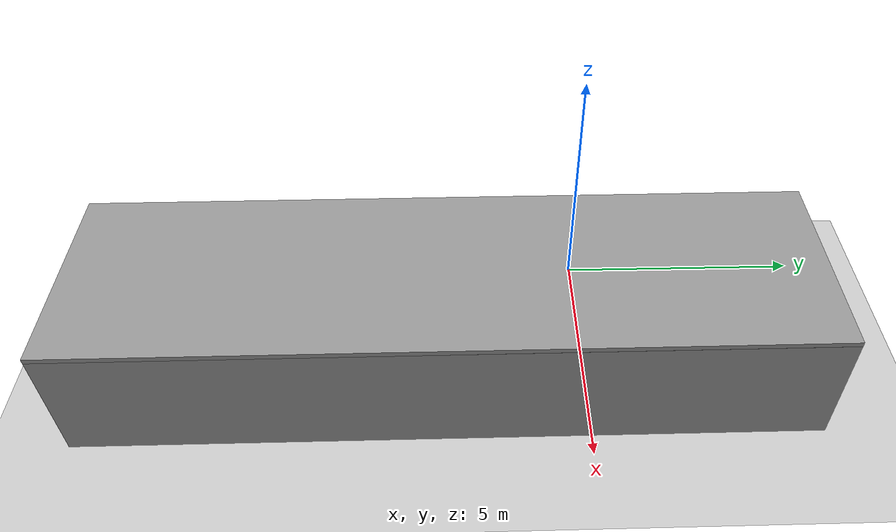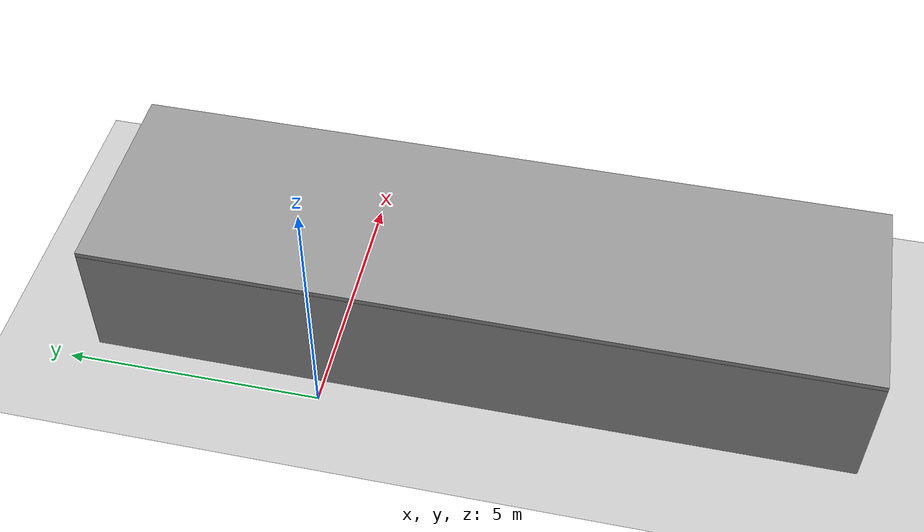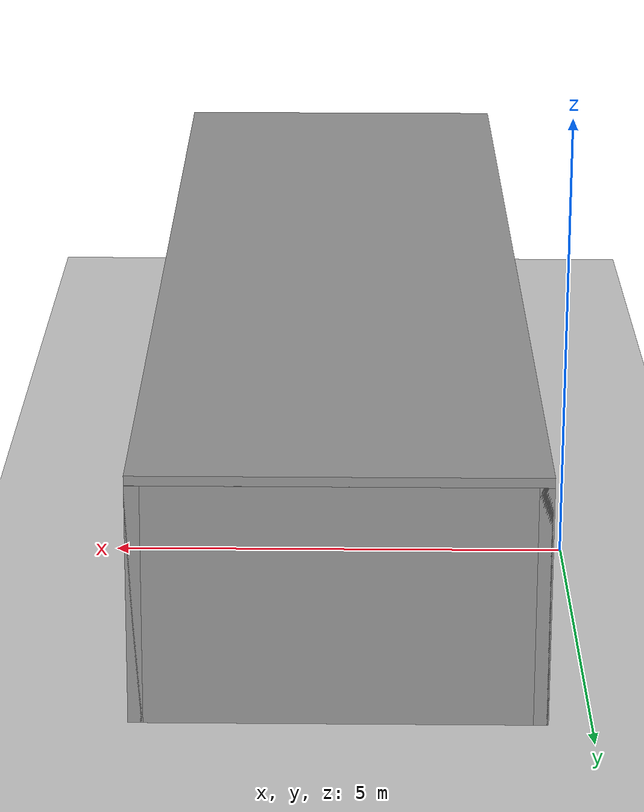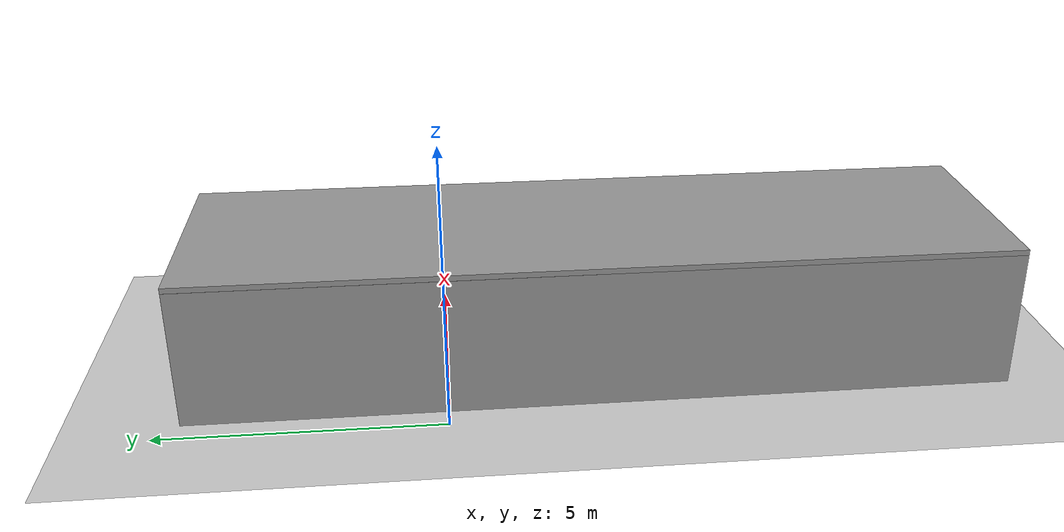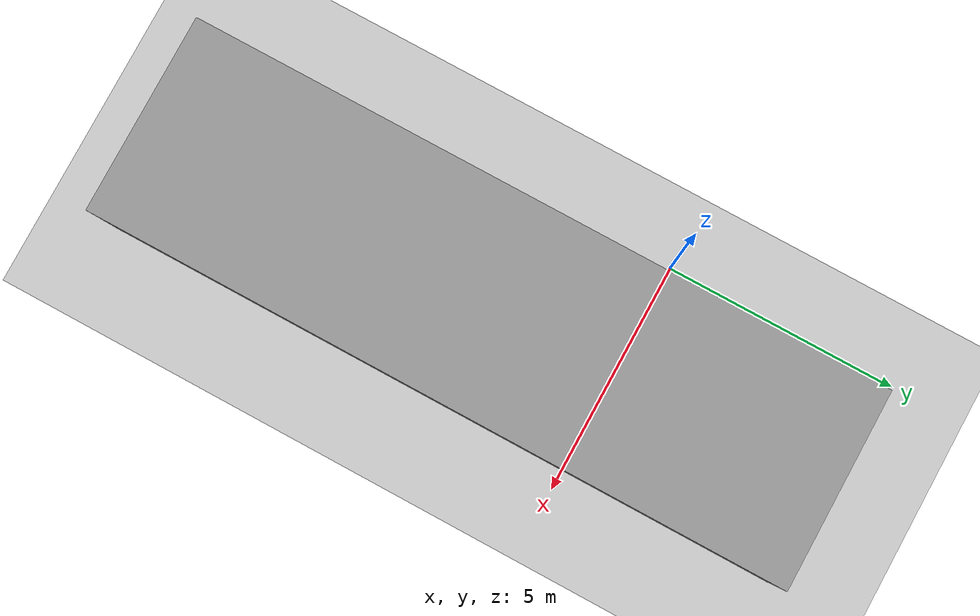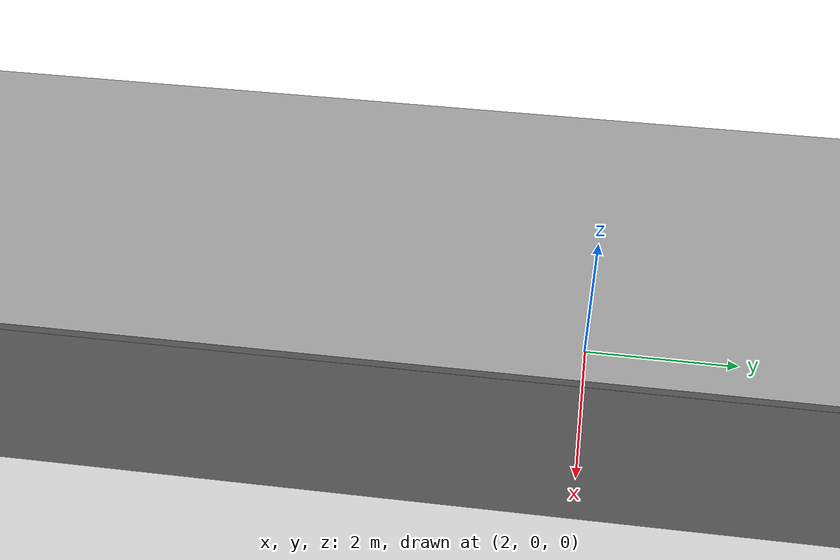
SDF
<sdf version="1.7">
 <world name="default">
  <light name="sun" type="directional">
   <pose>0 0 10 0 -0 0</pose>
   <diffuse>0.8 0.8 0.8 1</diffuse>
   <specular>0.2 0.2 0.2 1</specular>
   <attenuation>
    <range>1000</range>
    <constant>0.9</constant>
    <linear>0.01</linear>
    <quadratic>0.001</quadratic>
   </attenuation>
   <direction>-0.5 0.1 -0.9</direction>
   <spot><inner_angle>0</inner_angle><outer_angle>0</outer_angle><falloff>0</falloff></spot>
  </light>
  <model name="ground_plane">
   <static>1</static>
   <link name="link">
    <collision name="collision">
     <geometry><plane><normal>0 0 1</normal><size>100 100</size></plane></geometry>
     <surface>
      <contact><collide_bitmask>65535</collide_bitmask></contact>
      <friction><ode><mu>100</mu><mu2>50</mu2></ode></friction>
     </surface>
    </collision>
    <visual name="visual">
     <cast_shadows>0</cast_shadows>
     <geometry><plane><normal>0 0 1</normal><size>100 100</size></plane></geometry>
     <material>
      <script><uri>file://media/materials/scripts/gazebo.material</uri><name>Gazebo/Grey</name></script>
     </material>
    </visual>
   </link>
  </model>
  <gravity>0 0 -9.8</gravity>
  <magnetic_field>6e-06 2.3e-05 -4.2e-05</magnetic_field>
  <atmosphere type="adiabatic"/>
  <physics type="ode">
   <max_step_size>0.001</max_step_size>
   <real_time_factor>1</real_time_factor>
   <real_time_update_rate>1000</real_time_update_rate>
  </physics>
  <scene><ambient>0.4 0.4 0.4 1</ambient><background>0.7 0.7 0.7 1</background><shadows>1</shadows></scene>
  <spherical_coordinates>
   <surface_model>EARTH_WGS84</surface_model>
   <latitude_deg>0</latitude_deg>
   <longitude_deg>0</longitude_deg>
   <elevation>0</elevation>
   <heading_deg>0</heading_deg>
  </spherical_coordinates>
  <model name="mine_tunnel">
   <pose>2.2875 -2.75 0 0 -0 0</pose>
   <link name="Floor_0">
    <collision name="Floor_0_Collision">
     <geometry><box><size>4.15 14.65 0.1</size></box></geometry>
     <pose>0 0 0.05 0 -0 0</pose>
    </collision>
    <visual name="Floor_0_Visual">
     <pose>0 0 0.05 0 -0 0</pose>
     <geometry><box><size>4.15 14.65 0.1</size></box></geometry>
     <material>
      <script><uri>file://media/materials/scripts/gazebo.material</uri><name>Gazebo/Grey</name></script>
      <ambient>1 1 1 1</ambient>
     </material>
     <meta><layer>1</layer></meta>
    </visual>
    <pose>0.2125 0 2.5 0 -0 0</pose>
   </link>
   <link name="Wall_0">
    <collision name="Wall_0_Collision">
     <geometry><box><size>14.65 0.15 2.5</size></box></geometry>
     <pose>0 0 1.25 0 -0 0</pose>
    </collision>
    <visual name="Wall_0_Visual">
     <pose>0 0 1.25 0 -0 0</pose>
     <geometry><box><size>14.65 0.15 2.5</size></box></geometry>
     <material>
      <script><uri>file://media/materials/scripts/gazebo.material</uri><name>Gazebo/Grey</name></script>
      <ambient>1 1 1 1</ambient>
     </material>
     <meta><layer>0</layer></meta>
    </visual>
    <pose>-1.7875 0 0 0 -0 1.5708</pose>
   </link>
   <link name="Wall_2">
    <collision name="Wall_2_Collision">
     <geometry><box><size>4.15 0.15 2.5</size></box></geometry>
     <pose>0 0 1.25 0 -0 0</pose>
    </collision>
    <visual name="Wall_2_Visual">
     <pose>0 0 1.25 0 -0 0</pose>
     <geometry><box><size>4.15 0.15 2.5</size></box></geometry>
     <material>
      <script><uri>file://media/materials/scripts/gazebo.material</uri><name>Gazebo/Grey</name></script>
      <ambient>1 1 1 1</ambient>
     </material>
     <meta><layer>0</layer></meta>
    </visual>
    <pose>0.2125 7.25 0 0 -0 0</pose>
   </link>
   <link name="Wall_4">
    <collision name="Wall_4_Collision">
     <geometry><box><size>14.65 0.15 2.5</size></box></geometry>
     <pose>0 0 1.25 0 -0 0</pose>
    </collision>
    <visual name="Wall_4_Visual">
     <pose>0 0 1.25 0 -0 0</pose>
     <geometry><box><size>14.65 0.15 2.5</size></box></geometry>
     <material>
      <script><uri>file://media/materials/scripts/gazebo.material</uri><name>Gazebo/Grey</name></script>
      <ambient>1 1 1 1</ambient>
     </material>
     <meta><layer>0</layer></meta>
    </visual>
    <pose>2.2125 0 0 0 -0 -1.5708</pose>
   </link>
   <link name="Wall_6">
    <collision name="Wall_6_Collision">
     <geometry><box><size>14.65 0.15 0.001</size></box></geometry>
     <pose>0 0 0.0005 0 -0 0</pose>
    </collision>
    <visual name="Wall_6_Visual">
     <pose>0 0 0.0005 0 -0 0</pose>
     <geometry><box><size>14.65 0.15 0.001</size></box></geometry>
     <material>
      <script><uri>file://media/materials/scripts/gazebo.material</uri><name>Gazebo/Grey</name></script>
      <ambient>1 1 1 1</ambient>
     </material>
     <meta><layer>1</layer></meta>
    </visual>
    <pose>-1.7875 0 2.5 0 -0 1.5708</pose>
   </link>
   <link name="Wall_7">
    <collision name="Wall_7_Collision">
     <geometry><box><size>4.15 0.15 0.001</size></box></geometry>
     <pose>0 0 0.0005 0 -0 0</pose>
    </collision>
    <visual name="Wall_7_Visual">
     <pose>0 0 0.0005 0 -0 0</pose>
     <geometry><box><size>4.15 0.15 0.001</size></box></geometry>
     <material>
      <script><uri>file://media/materials/scripts/gazebo.material</uri><name>Gazebo/Grey</name></script>
      <ambient>1 1 1 1</ambient>
     </material>
     <meta><layer>1</layer></meta>
    </visual>
    <pose>0.2125 7.25 2.5 0 -0 0</pose>
   </link>
   <link name="Wall_8">
    <collision name="Wall_8_Collision">
     <geometry><box><size>14.65 0.15 0.001</size></box></geometry>
     <pose>0 0 0.0005 0 -0 0</pose>
    </collision>
    <visual name="Wall_8_Visual">
     <pose>0 0 0.0005 0 -0 0</pose>
     <geometry><box><size>14.65 0.15 0.001</size></box></geometry>
     <material>
      <script><uri>file://media/materials/scripts/gazebo.material</uri><name>Gazebo/Grey</name></script>
      <ambient>1 1 1 1</ambient>
     </material>
     <meta><layer>1</layer></meta>
    </visual>
    <pose>2.2125 0 2.5 0 -0 -1.5708</pose>
   </link>
   <static>1</static>
  </model>
 </world>
</sdf>
